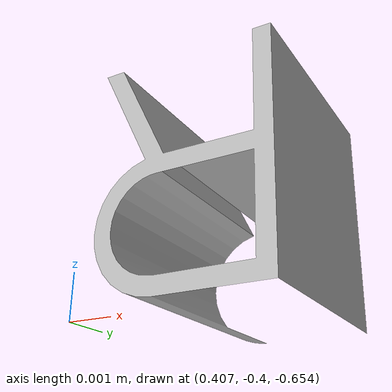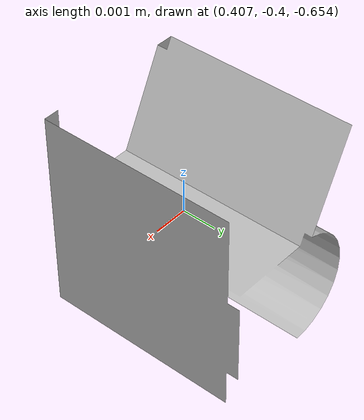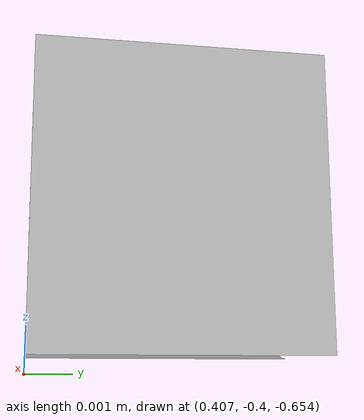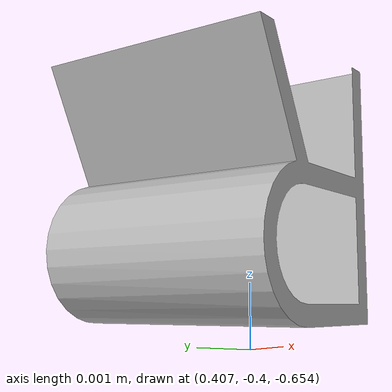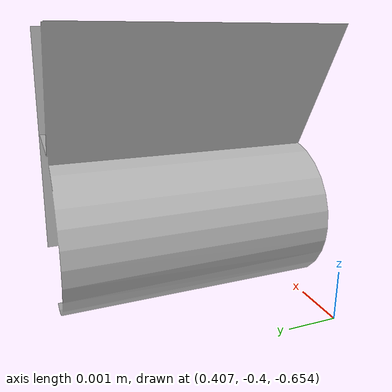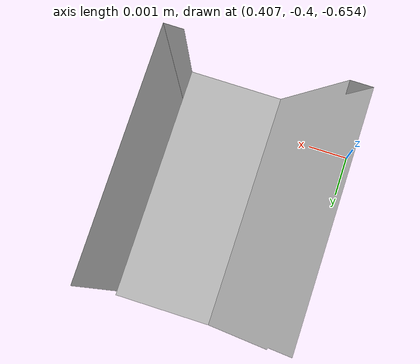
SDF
<?xml version="1.0" ?>
<sdf version="1.6">
  <model name="Fanuc_Robot">
    <static>true</static>
    <link name="link">
      <collision name="collision">
        <geometry>
          <mesh>
            <scale>0.01 0.01 0.01</scale>
            <uri>model://Fanuc_robots/meshes/FanucLRMate200iD.stl</uri>
          </mesh>
        </geometry>
      </collision>
      <visual name="visual">
        <geometry>
          <mesh>
            <scale>0.01 0.01 0.01</scale>
            <uri>model://Fanuc_robots/meshes/FanucLRMate200iD.stl</uri>
          </mesh>
        </geometry>
      </visual>
    </link>
  </model>
</sdf>
